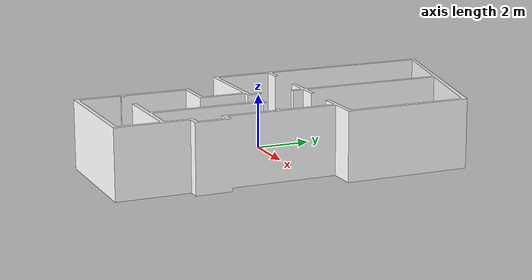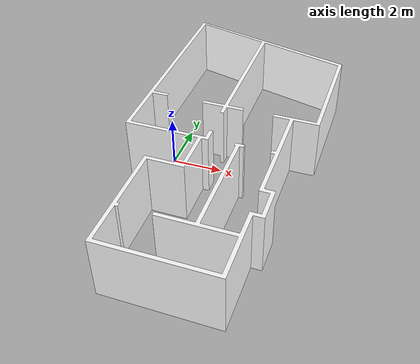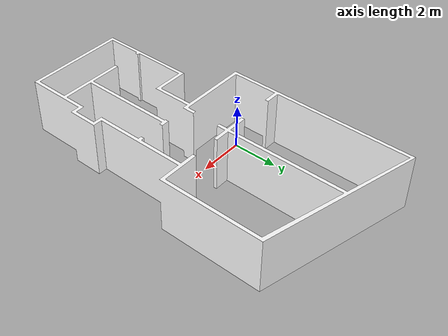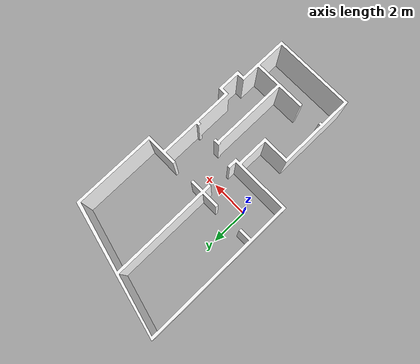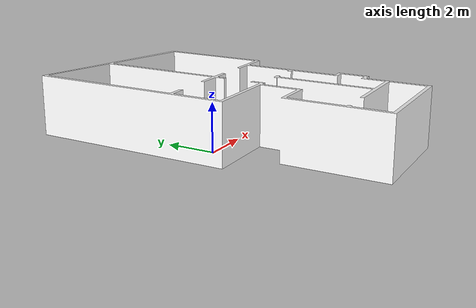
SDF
<?xml version="1.0" ?>
<sdf version="1.5">
  <model name="apartment_3">
    <link name="link">
      <pose>0 0 0 0 0 0</pose>
      <collision name="collision">
        <geometry>
          <mesh>
            <uri>model://apartment_3/meshes/walls.dae</uri>
          </mesh>
        </geometry>
      </collision>
      <visual name="visual">
        <geometry>
          <mesh>
            <uri>model://apartment_3/meshes/walls.dae</uri>
          </mesh>
        </geometry>
      </visual>
    </link>
    <static>1</static>
  </model>
</sdf>
